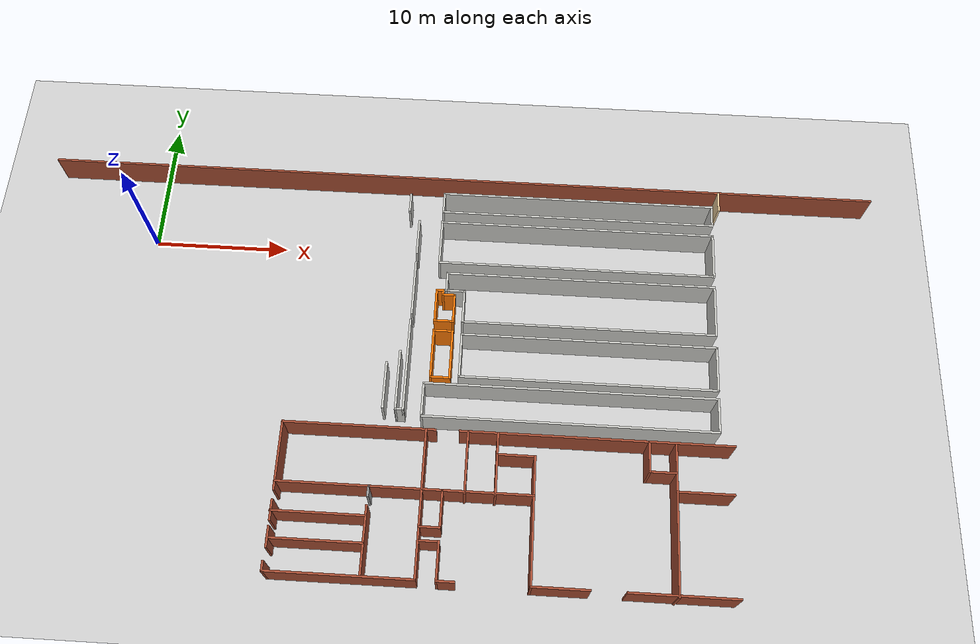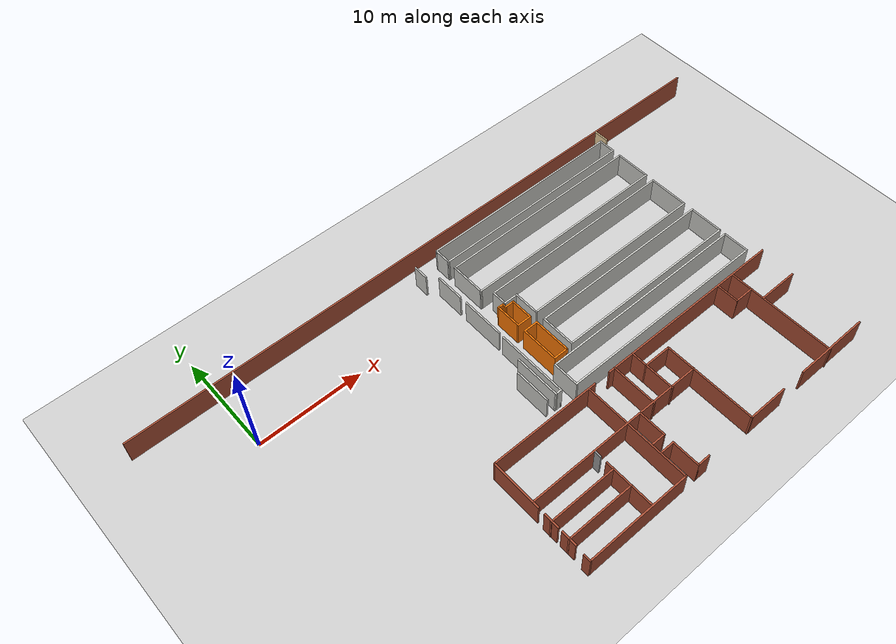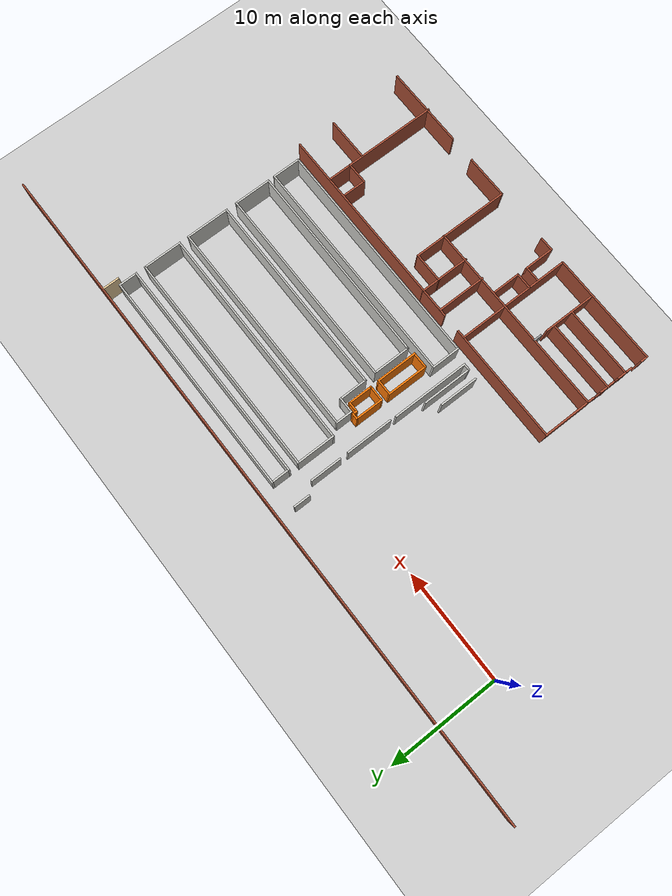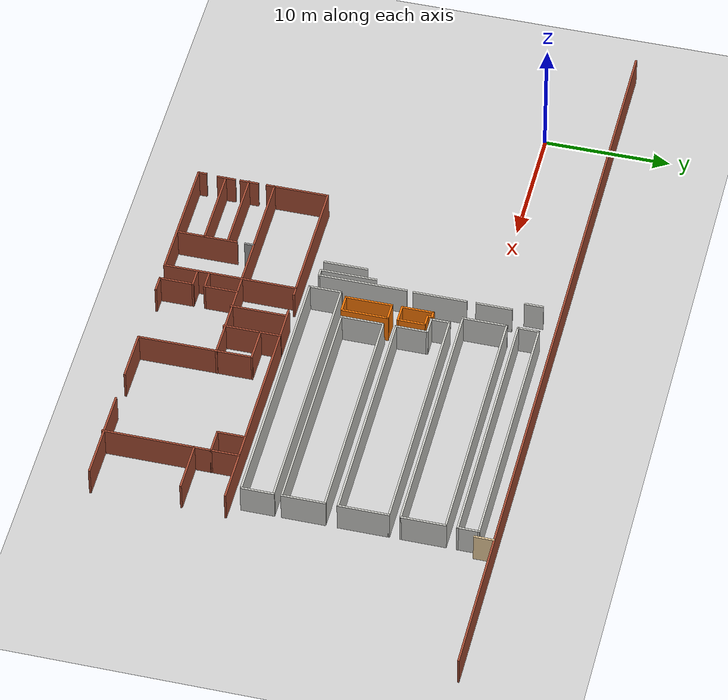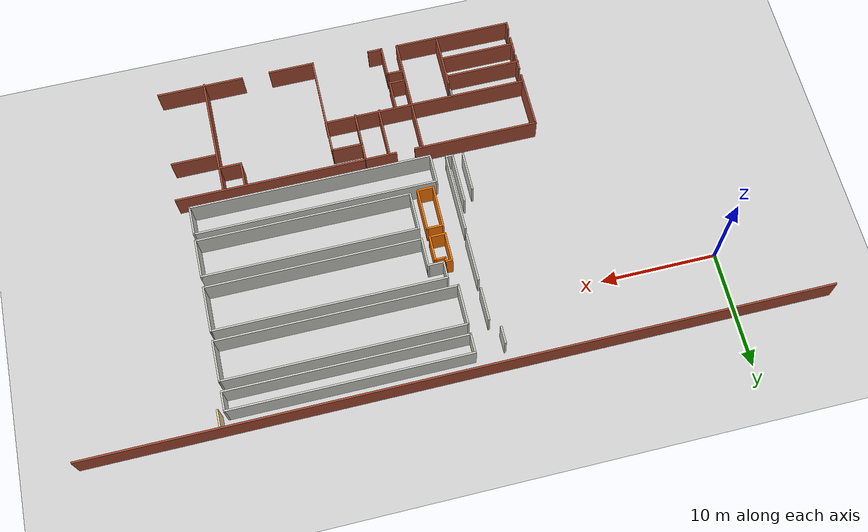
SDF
<sdf version="1.6">
 <world name="default">
  <model name="ground_plane">
   <static>1</static>
   <link name="link">
    <collision name="collision">
     <geometry><plane><normal>0 0 1</normal><size>100 100</size></plane></geometry>
     <surface><friction><ode><mu>100</mu><mu2>50</mu2></ode></friction></surface>
    </collision>
    <visual name="visual">
     <cast_shadows>0</cast_shadows>
     <geometry><plane><normal>0 0 1</normal><size>100 100</size></plane></geometry>
     <material>
      <script><uri>file://media/materials/scripts/gazebo.material</uri><name>Gazebo/Grey</name></script>
     </material>
    </visual>
   </link>
  </model>
  <model name="jeonju-2023">
   <pose>-5.65351 1.61412 0 0 -0 0</pose>
   <link name="Wall_112">
    <collision name="Wall_112_Collision">
     <geometry><box><size>62.5 0.15 2.5</size></box></geometry>
     <pose>0 0 1.25 0 -0 0</pose>
    </collision>
    <visual name="Wall_112_Visual">
     <pose>0 0 1.25 0 -0 0</pose>
     <geometry><box><size>62.5 0.15 2.5</size></box></geometry>
     <material>
      <script><uri>file://media/materials/scripts/gazebo.material</uri><name>Gazebo/Bricks</name></script>
      <ambient>1 1 1 1</ambient>
     </material>
    </visual>
    <pose>28.7185 3.9415 0 0 -0 0</pose>
   </link>
   <link name="Wall_121">
    <collision name="Wall_121_Collision">
     <geometry><box><size>7.502 0.15 2.5</size></box></geometry>
     <pose>0 0 1.25 0 -0 0</pose>
    </collision>
    <visual name="Wall_121_Visual">
     <pose>0 0 1.25 0 -0 0</pose>
     <geometry><box><size>7.502 0.15 2.5</size></box></geometry>
     <material>
      <script><uri>file://media/materials/scripts/gazebo.material</uri><name>Gazebo/Bricks</name></script>
      <ambient>1 1 1 1</ambient>
     </material>
    </visual>
    <pose>45.1485 -26.6705 0 0 -0 3.14159</pose>
   </link>
   <link name="Wall_123">
    <collision name="Wall_123_Collision">
     <geometry><box><size>4 0.15 2.5</size></box></geometry>
     <pose>0 0 1.25 0 -0 0</pose>
    </collision>
    <visual name="Wall_123_Visual">
     <pose>0 0 1.25 0 -0 0</pose>
     <geometry><box><size>4 0.15 2.5</size></box></geometry>
     <material>
      <script><uri>file://media/materials/scripts/gazebo.material</uri><name>Gazebo/Bricks</name></script>
      <ambient>1 1 1 1</ambient>
     </material>
    </visual>
    <pose>37.0525 -26.6665 0 0 -0 3.14159</pose>
   </link>
   <link name="Wall_124">
    <collision name="Wall_124_Collision">
     <geometry><box><size>9 0.15 2.5</size></box></geometry>
     <pose>0 0 1.25 0 -0 0</pose>
    </collision>
    <visual name="Wall_124_Visual">
     <pose>0 0 1.25 0 -0 0</pose>
     <geometry><box><size>9 0.15 2.5</size></box></geometry>
     <material>
      <script><uri>file://media/materials/scripts/gazebo.material</uri><name>Gazebo/Bricks</name></script>
      <ambient>1 1 1 1</ambient>
     </material>
    </visual>
    <pose>35.1275 -22.2415 0 0 -0 1.5708</pose>
   </link>
   <link name="Wall_125">
    <collision name="Wall_125_Collision">
     <geometry><box><size>2.75338 0.15 2.5</size></box></geometry>
     <pose>0 0 1.25 0 -0 0</pose>
    </collision>
    <visual name="Wall_125_Visual">
     <pose>0 0 1.25 0 -0 0</pose>
     <geometry><box><size>2.75338 0.15 2.5</size></box></geometry>
     <material>
      <script><uri>file://media/materials/scripts/gazebo.material</uri><name>Gazebo/Bricks</name></script>
      <ambient>1 1 1 1</ambient>
     </material>
    </visual>
    <pose>33.826 -17.811 0 0 -0 3.13737</pose>
   </link>
   <link name="Wall_126">
    <collision name="Wall_126_Collision">
     <geometry><box><size>1.676 0.15 2.5</size></box></geometry>
     <pose>0 0 1.25 0 -0 0</pose>
    </collision>
    <visual name="Wall_126_Visual">
     <pose>0 0 1.25 0 -0 0</pose>
     <geometry><box><size>1.676 0.15 2.5</size></box></geometry>
     <material>
      <script><uri>file://media/materials/scripts/gazebo.material</uri><name>Gazebo/Bricks</name></script>
      <ambient>1 1 1 1</ambient>
     </material>
    </visual>
    <pose>32.5245 -17.0425 0 0 -0 1.5708</pose>
   </link>
   <link name="Wall_127">
    <collision name="Wall_127_Collision">
     <geometry><box><size>16.45 0.15 2.5</size></box></geometry>
     <pose>0 0 1.25 0 -0 0</pose>
    </collision>
    <visual name="Wall_127_Visual">
     <pose>0 0 1.25 0 -0 0</pose>
     <geometry><box><size>16.45 0.15 2.5</size></box></geometry>
     <material>
      <script><uri>file://media/materials/scripts/gazebo.material</uri><name>Gazebo/Bricks</name></script>
      <ambient>1 1 1 1</ambient>
     </material>
    </visual>
    <pose>40.6745 -16.2795 0 0 -0 0</pose>
   </link>
   <link name="Wall_130">
    <collision name="Wall_130_Collision">
     <geometry><box><size>1.32194 0.15 2.5</size></box></geometry>
     <pose>0 0 1.25 0 -0 0</pose>
    </collision>
    <visual name="Wall_130_Visual">
     <pose>0 0 1.25 0 -0 0</pose>
     <geometry><box><size>1.32194 0.15 2.5</size></box></geometry>
     <material>
      <script><uri>file://media/materials/scripts/gazebo.material</uri><name>Gazebo/Bricks</name></script>
      <ambient>1 1 1 1</ambient>
     </material>
    </visual>
    <pose>29.5105 -26.6665 0 0 -0 3.14159</pose>
   </link>
   <link name="Wall_132">
    <collision name="Wall_132_Collision">
     <geometry><box><size>10.2287 0.15 2.5</size></box></geometry>
     <pose>0 0 1.25 0 -0 0</pose>
    </collision>
    <visual name="Wall_132_Visual">
     <pose>0 0 1.25 0 -0 0</pose>
     <geometry><box><size>10.2287 0.15 2.5</size></box></geometry>
     <material>
      <script><uri>file://media/materials/scripts/gazebo.material</uri><name>Gazebo/Bricks</name></script>
      <ambient>1 1 1 1</ambient>
     </material>
    </visual>
    <pose>22.485 -26.6665 0 0 -0 3.14159</pose>
   </link>
   <link name="Wall_133">
    <collision name="Wall_133_Collision">
     <geometry><box><size>0.75 0.15 2.5</size></box></geometry>
     <pose>0 0 1.25 0 -0 0</pose>
    </collision>
    <visual name="Wall_133_Visual">
     <pose>0 0 1.25 0 -0 0</pose>
     <geometry><box><size>0.75 0.15 2.5</size></box></geometry>
     <material>
      <script><uri>file://media/materials/scripts/gazebo.material</uri><name>Gazebo/Bricks</name></script>
      <ambient>1 1 1 1</ambient>
     </material>
    </visual>
    <pose>17.4455 -26.3665 0 0 -0 1.5708</pose>
   </link>
   <link name="Wall_295">
    <collision name="Wall_295_Collision">
     <geometry><box><size>1.5 0.15 2.5</size></box></geometry>
     <pose>0 0 1.25 0 -0 0</pose>
    </collision>
    <visual name="Wall_295_Visual">
     <pose>0 0 1.25 0 -0 0</pose>
     <geometry><box><size>1.5 0.15 2.5</size></box></geometry>
     <material>
      <script><uri>file://media/materials/scripts/gazebo.material</uri><name>Gazebo/CeilingTiled</name></script>
      <ambient>0.435294 0.796078 0.67451 1</ambient>
     </material>
    </visual>
    <pose>25.0245 1.7515 0 0 0 -1.5708</pose>
   </link>
   <link name="Wall_300">
    <collision name="Wall_300_Collision">
     <geometry><box><size>2.853 0.15 2.5</size></box></geometry>
     <pose>0 0 1.25 0 -0 0</pose>
    </collision>
    <visual name="Wall_300_Visual">
     <pose>0 0 1.25 0 -0 0</pose>
     <geometry><box><size>2.853 0.15 2.5</size></box></geometry>
     <material>
      <script><uri>file://media/materials/scripts/gazebo.material</uri><name>Gazebo/CeilingTiled</name></script>
      <ambient>0.435294 0.796078 0.67451 1</ambient>
     </material>
    </visual>
    <pose>25.8245 -1.178 0 0 0 -1.5708</pose>
   </link>
   <link name="Wall_305">
    <collision name="Wall_305_Collision">
     <geometry><box><size>4.25 0.15 2.5</size></box></geometry>
     <pose>0 0 1.25 0 -0 0</pose>
    </collision>
    <visual name="Wall_305_Visual">
     <pose>0 0 1.25 0 -0 0</pose>
     <geometry><box><size>4.25 0.15 2.5</size></box></geometry>
     <material>
      <script><uri>file://media/materials/scripts/gazebo.material</uri><name>Gazebo/CeilingTiled</name></script>
      <ambient>0.435294 0.796078 0.67451 1</ambient>
     </material>
    </visual>
    <pose>25.8305 -5.4155 0 0 0 -1.5708</pose>
   </link>
   <link name="Wall_310">
    <collision name="Wall_310_Collision">
     <geometry><box><size>7 0.15 2.5</size></box></geometry>
     <pose>0 0 1.25 0 -0 0</pose>
    </collision>
    <visual name="Wall_310_Visual">
     <pose>0 0 1.25 0 -0 0</pose>
     <geometry><box><size>7 0.15 2.5</size></box></geometry>
     <material>
      <script><uri>file://media/materials/scripts/gazebo.material</uri><name>Gazebo/CeilingTiled</name></script>
      <ambient>0.435294 0.796078 0.67451 1</ambient>
     </material>
    </visual>
    <pose>25.7885 -11.4905 0 0 0 -1.5708</pose>
   </link>
   <link name="Wall_311">
    <collision name="Wall_311_Collision">
     <geometry><box><size>0.691 0.15 2.5</size></box></geometry>
     <pose>0 0 1.25 0 -0 0</pose>
    </collision>
    <visual name="Wall_311_Visual">
     <pose>0 0 1.25 0 -0 0</pose>
     <geometry><box><size>0.691 0.15 2.5</size></box></geometry>
     <material>
      <script><uri>file://media/materials/scripts/gazebo.material</uri><name>Gazebo/CeilingTiled</name></script>
      <ambient>0.435294 0.796078 0.67451 1</ambient>
     </material>
    </visual>
    <pose>25.518 -14.9155 0 0 -0 3.14159</pose>
   </link>
   <link name="Wall_312">
    <collision name="Wall_312_Collision">
     <geometry><box><size>4.5 0.15 2.5</size></box></geometry>
     <pose>0 0 1.25 0 -0 0</pose>
    </collision>
    <visual name="Wall_312_Visual">
     <pose>0 0 1.25 0 -0 0</pose>
     <geometry><box><size>4.5 0.15 2.5</size></box></geometry>
     <material>
      <script><uri>file://media/materials/scripts/gazebo.material</uri><name>Gazebo/CeilingTiled</name></script>
      <ambient>0.435294 0.796078 0.67451 1</ambient>
     </material>
    </visual>
    <pose>25.2475 -12.7405 0 0 -0 1.5708</pose>
   </link>
   <link name="Wall_317">
    <collision name="Wall_317_Collision">
     <geometry><box><size>3.5 0.15 2.5</size></box></geometry>
     <pose>0 0 1.25 0 -0 0</pose>
    </collision>
    <visual name="Wall_317_Visual">
     <pose>0 0 1.25 0 -0 0</pose>
     <geometry><box><size>3.5 0.15 2.5</size></box></geometry>
     <material>
      <script><uri>file://media/materials/scripts/gazebo.material</uri><name>Gazebo/CeilingTiled</name></script>
      <ambient>0.435294 0.796078 0.67451 1</ambient>
     </material>
    </visual>
    <pose>24.3495 -13.1595 0 0 0 -1.5708</pose>
   </link>
   <link name="Wall_321">
    <collision name="Wall_321_Collision">
     <geometry><box><size>20.4063 0.15 2.5</size></box></geometry>
     <pose>0 0 1.25 0 -0 0</pose>
    </collision>
    <visual name="Wall_321_Visual">
     <pose>0 0 1.25 0 -0 0</pose>
     <geometry><box><size>20.4063 0.15 2.5</size></box></geometry>
     <material>
      <script><uri>file://media/materials/scripts/gazebo.material</uri><name>Gazebo/CeilingTiled</name></script>
      <ambient>0.996078 0.47451 0.0196078 1</ambient>
     </material>
    </visual>
    <pose>37.6965 2.6705 0 0 -0 0</pose>
   </link>
   <link name="Wall_322">
    <collision name="Wall_322_Collision">
     <geometry><box><size>1.75 0.15 2.5</size></box></geometry>
     <pose>0 0 1.25 0 -0 0</pose>
    </collision>
    <visual name="Wall_322_Visual">
     <pose>0 0 1.25 0 -0 0</pose>
     <geometry><box><size>1.75 0.15 2.5</size></box></geometry>
     <material>
      <script><uri>file://media/materials/scripts/gazebo.material</uri><name>Gazebo/CeilingTiled</name></script>
      <ambient>0.996078 0.47451 0.0196078 1</ambient>
     </material>
    </visual>
    <pose>47.8245 1.8705 0 0 0 -1.5708</pose>
   </link>
   <link name="Wall_323">
    <collision name="Wall_323_Collision">
     <geometry><box><size>20.4063 0.15 2.5</size></box></geometry>
     <pose>0 0 1.25 0 -0 0</pose>
    </collision>
    <visual name="Wall_323_Visual">
     <pose>0 0 1.25 0 -0 0</pose>
     <geometry><box><size>20.4063 0.15 2.5</size></box></geometry>
     <material>
      <script><uri>file://media/materials/scripts/gazebo.material</uri><name>Gazebo/CeilingTiled</name></script>
      <ambient>0.996078 0.47451 0.0196078 1</ambient>
     </material>
    </visual>
    <pose>37.6965 1.0705 0 0 -0 3.14159</pose>
   </link>
   <link name="Wall_324">
    <collision name="Wall_324_Collision">
     <geometry><box><size>1.75 0.15 2.5</size></box></geometry>
     <pose>0 0 1.25 0 -0 0</pose>
    </collision>
    <visual name="Wall_324_Visual">
     <pose>0 0 1.25 0 -0 0</pose>
     <geometry><box><size>1.75 0.15 2.5</size></box></geometry>
     <material>
      <script><uri>file://media/materials/scripts/gazebo.material</uri><name>Gazebo/CeilingTiled</name></script>
      <ambient>0.996078 0.47451 0.0196078 1</ambient>
     </material>
    </visual>
    <pose>27.5685 1.8705 0 0 -0 1.5708</pose>
   </link>
   <link name="Wall_326">
    <collision name="Wall_326_Collision">
     <geometry><box><size>20.422 0.15 2.5</size></box></geometry>
     <pose>0 0 1.25 0 -0 0</pose>
    </collision>
    <visual name="Wall_326_Visual">
     <pose>0 0 1.25 0 -0 0</pose>
     <geometry><box><size>20.422 0.15 2.5</size></box></geometry>
     <material>
      <script><uri>file://media/materials/scripts/gazebo.material</uri><name>Gazebo/CeilingTiled</name></script>
      <ambient>0.996078 0.47451 0.0196078 1</ambient>
     </material>
    </visual>
    <pose>37.6885 0.1765 0 0 -0 0</pose>
   </link>
   <link name="Wall_327">
    <collision name="Wall_327_Collision">
     <geometry><box><size>3.556 0.15 2.5</size></box></geometry>
     <pose>0 0 1.25 0 -0 0</pose>
    </collision>
    <visual name="Wall_327_Visual">
     <pose>0 0 1.25 0 -0 0</pose>
     <geometry><box><size>3.556 0.15 2.5</size></box></geometry>
     <material>
      <script><uri>file://media/materials/scripts/gazebo.material</uri><name>Gazebo/CeilingTiled</name></script>
      <ambient>0.996078 0.47451 0.0196078 1</ambient>
     </material>
    </visual>
    <pose>47.8245 -1.5265 0 0 0 -1.5708</pose>
   </link>
   <link name="Wall_328">
    <collision name="Wall_328_Collision">
     <geometry><box><size>20.422 0.15 2.5</size></box></geometry>
     <pose>0 0 1.25 0 -0 0</pose>
    </collision>
    <visual name="Wall_328_Visual">
     <pose>0 0 1.25 0 -0 0</pose>
     <geometry><box><size>20.422 0.15 2.5</size></box></geometry>
     <material>
      <script><uri>file://media/materials/scripts/gazebo.material</uri><name>Gazebo/CeilingTiled</name></script>
      <ambient>0.996078 0.47451 0.0196078 1</ambient>
     </material>
    </visual>
    <pose>37.6885 -3.2295 0 0 -0 3.14159</pose>
   </link>
   <link name="Wall_329">
    <collision name="Wall_329_Collision">
     <geometry><box><size>3.55624 0.15 2.5</size></box></geometry>
     <pose>0 0 1.25 0 -0 0</pose>
    </collision>
    <visual name="Wall_329_Visual">
     <pose>0 0 1.25 0 -0 0</pose>
     <geometry><box><size>3.55624 0.15 2.5</size></box></geometry>
     <material>
      <script><uri>file://media/materials/scripts/gazebo.material</uri><name>Gazebo/CeilingTiled</name></script>
      <ambient>0.996078 0.47451 0.0196078 1</ambient>
     </material>
    </visual>
    <pose>27.5525 -1.5265 0 0 -0 1.5708</pose>
   </link>
   <link name="Wall_331">
    <collision name="Wall_331_Collision">
     <geometry><box><size>19.75 0.15 2.5</size></box></geometry>
     <pose>0 0 1.25 0 -0 0</pose>
    </collision>
    <visual name="Wall_331_Visual">
     <pose>0 0 1.25 0 -0 0</pose>
     <geometry><box><size>19.75 0.15 2.5</size></box></geometry>
     <material>
      <script><uri>file://media/materials/scripts/gazebo.material</uri><name>Gazebo/CeilingTiled</name></script>
      <ambient>0.996078 0.47451 0.0196078 1</ambient>
     </material>
    </visual>
    <pose>38.0245 -4.1145 0 0 -0 0</pose>
   </link>
   <link name="Wall_332">
    <collision name="Wall_332_Collision">
     <geometry><box><size>4 0.15 2.5</size></box></geometry>
     <pose>0 0 1.25 0 -0 0</pose>
    </collision>
    <visual name="Wall_332_Visual">
     <pose>0 0 1.25 0 -0 0</pose>
     <geometry><box><size>4 0.15 2.5</size></box></geometry>
     <material>
      <script><uri>file://media/materials/scripts/gazebo.material</uri><name>Gazebo/CeilingTiled</name></script>
      <ambient>0.996078 0.47451 0.0196078 1</ambient>
     </material>
    </visual>
    <pose>47.8245 -6.0395 0 0 0 -1.5708</pose>
   </link>
   <link name="Wall_333">
    <collision name="Wall_333_Collision">
     <geometry><box><size>18.4297 0.15 2.5</size></box></geometry>
     <pose>0 0 1.25 0 -0 0</pose>
    </collision>
    <visual name="Wall_333_Visual">
     <pose>0 0 1.25 0 -0 0</pose>
     <geometry><box><size>18.4297 0.15 2.5</size></box></geometry>
     <material>
      <script><uri>file://media/materials/scripts/gazebo.material</uri><name>Gazebo/CeilingTiled</name></script>
      <ambient>0.996078 0.47451 0.0196078 1</ambient>
     </material>
    </visual>
    <pose>38.6845 -7.9645 0 0 -0 3.14159</pose>
   </link>
   <link name="Wall_334">
    <collision name="Wall_334_Collision">
     <geometry><box><size>2.58514 0.15 2.5</size></box></geometry>
     <pose>0 0 1.25 0 -0 0</pose>
    </collision>
    <visual name="Wall_334_Visual">
     <pose>0 0 1.25 0 -0 0</pose>
     <geometry><box><size>2.58514 0.15 2.5</size></box></geometry>
     <material>
      <script><uri>file://media/materials/scripts/gazebo.material</uri><name>Gazebo/CeilingTiled</name></script>
      <ambient>0.996078 0.47451 0.0196078 1</ambient>
     </material>
    </visual>
    <pose>29.5445 -6.747 0 0 -0 1.5708</pose>
   </link>
   <link name="Wall_335">
    <collision name="Wall_335_Collision">
     <geometry><box><size>1.47 0.15 2.5</size></box></geometry>
     <pose>0 0 1.25 0 -0 0</pose>
    </collision>
    <visual name="Wall_335_Visual">
     <pose>0 0 1.25 0 -0 0</pose>
     <geometry><box><size>1.47 0.15 2.5</size></box></geometry>
     <material>
      <script><uri>file://media/materials/scripts/gazebo.material</uri><name>Gazebo/CeilingTiled</name></script>
      <ambient>0.996078 0.47451 0.0196078 1</ambient>
     </material>
    </visual>
    <pose>28.8845 -5.5295 0 0 -0 3.14159</pose>
   </link>
   <link name="Wall_336">
    <collision name="Wall_336_Collision">
     <geometry><box><size>1.565 0.15 2.5</size></box></geometry>
     <pose>0 0 1.25 0 -0 0</pose>
    </collision>
    <visual name="Wall_336_Visual">
     <pose>0 0 1.25 0 -0 0</pose>
     <geometry><box><size>1.565 0.15 2.5</size></box></geometry>
     <material>
      <script><uri>file://media/materials/scripts/gazebo.material</uri><name>Gazebo/CeilingTiled</name></script>
      <ambient>0.996078 0.47451 0.0196078 1</ambient>
     </material>
    </visual>
    <pose>28.2245 -4.822 0 0 -0 1.5708</pose>
   </link>
   <link name="Wall_338">
    <collision name="Wall_338_Collision">
     <geometry><box><size>1.47627 0.15 2.5</size></box></geometry>
     <pose>0 0 1.25 0 -0 0</pose>
    </collision>
    <visual name="Wall_338_Visual">
     <pose>0 0 1.25 0 -0 0</pose>
     <geometry><box><size>1.47627 0.15 2.5</size></box></geometry>
     <material>
      <script><uri>file://media/materials/scripts/gazebo.material</uri><name>Gazebo/Grey</name></script>
      <ambient>0.996078 0.47451 0.0196078 1</ambient>
     </material>
    </visual>
    <pose>28.1875 -7.9775 0 0 -0 0</pose>
   </link>
   <link name="Wall_339">
    <collision name="Wall_339_Collision">
     <geometry><box><size>2.25 0.15 2.5</size></box></geometry>
     <pose>0 0 1.25 0 -0 0</pose>
    </collision>
    <visual name="Wall_339_Visual">
     <pose>0 0 1.25 0 -0 0</pose>
     <geometry><box><size>2.25 0.15 2.5</size></box></geometry>
     <material>
      <script><uri>file://media/materials/scripts/gazebo.material</uri><name>Gazebo/Grey</name></script>
      <ambient>0.996078 0.47451 0.0196078 1</ambient>
     </material>
    </visual>
    <pose>28.8505 -6.9275 0 0 -0 1.5708</pose>
   </link>
   <link name="Wall_340">
    <collision name="Wall_340_Collision">
     <geometry><box><size>1 0.15 2.5</size></box></geometry>
     <pose>0 0 1.25 0 -0 0</pose>
    </collision>
    <visual name="Wall_340_Visual">
     <pose>0 0 1.25 0 -0 0</pose>
     <geometry><box><size>1 0.15 2.5</size></box></geometry>
     <material>
      <script><uri>file://media/materials/scripts/gazebo.material</uri><name>Gazebo/Grey</name></script>
      <ambient>0.996078 0.47451 0.0196078 1</ambient>
     </material>
    </visual>
    <pose>28.4255 -5.8775 0 0 -0 3.14159</pose>
   </link>
   <link name="Wall_341">
    <collision name="Wall_341_Collision">
     <geometry><box><size>0.5 0.15 2.5</size></box></geometry>
     <pose>0 0 1.25 0 -0 0</pose>
    </collision>
    <visual name="Wall_341_Visual">
     <pose>0 0 1.25 0 -0 0</pose>
     <geometry><box><size>0.5 0.15 2.5</size></box></geometry>
     <material>
      <script><uri>file://media/materials/scripts/gazebo.material</uri><name>Gazebo/Grey</name></script>
      <ambient>0.996078 0.47451 0.0196078 1</ambient>
     </material>
    </visual>
    <pose>28.0005 -5.7025 0 0 -0 1.5708</pose>
   </link>
   <link name="Wall_342">
    <collision name="Wall_342_Collision">
     <geometry><box><size>0.626268 0.15 2.5</size></box></geometry>
     <pose>0 0 1.25 0 -0 0</pose>
    </collision>
    <visual name="Wall_342_Visual">
     <pose>0 0 1.25 0 -0 0</pose>
     <geometry><box><size>0.626268 0.15 2.5</size></box></geometry>
     <material>
      <script><uri>file://media/materials/scripts/gazebo.material</uri><name>Gazebo/Grey</name></script>
      <ambient>0.996078 0.47451 0.0196078 1</ambient>
     </material>
    </visual>
    <pose>27.7625 -5.5275 0 0 -0 3.14159</pose>
   </link>
   <link name="Wall_343">
    <collision name="Wall_343_Collision">
     <geometry><box><size>2.59973 0.15 2.5</size></box></geometry>
     <pose>0 0 1.25 0 -0 0</pose>
    </collision>
    <visual name="Wall_343_Visual">
     <pose>0 0 1.25 0 -0 0</pose>
     <geometry><box><size>2.59973 0.15 2.5</size></box></geometry>
     <material>
      <script><uri>file://media/materials/scripts/gazebo.material</uri><name>Gazebo/Grey</name></script>
      <ambient>0.996078 0.47451 0.0196078 1</ambient>
     </material>
    </visual>
    <pose>27.5245 -6.7525 0 0 0 -1.5708</pose>
   </link>
   <link name="Wall_345">
    <collision name="Wall_345_Collision">
     <geometry><box><size>1.50272 0.15 2.5</size></box></geometry>
     <pose>0 0 1.25 0 -0 0</pose>
    </collision>
    <visual name="Wall_345_Visual">
     <pose>0 0 1.25 0 -0 0</pose>
     <geometry><box><size>1.50272 0.15 2.5</size></box></geometry>
     <material>
      <script><uri>file://media/materials/scripts/gazebo.material</uri><name>Gazebo/Grey</name></script>
      <ambient>0.996078 0.47451 0.0196078 1</ambient>
     </material>
    </visual>
    <pose>28.201 -8.7705 0 0 -0 0</pose>
   </link>
   <link name="Wall_346">
    <collision name="Wall_346_Collision">
     <geometry><box><size>3.75 0.15 2.5</size></box></geometry>
     <pose>0 0 1.25 0 -0 0</pose>
    </collision>
    <visual name="Wall_346_Visual">
     <pose>0 0 1.25 0 -0 0</pose>
     <geometry><box><size>3.75 0.15 2.5</size></box></geometry>
     <material>
      <script><uri>file://media/materials/scripts/gazebo.material</uri><name>Gazebo/Grey</name></script>
      <ambient>0.996078 0.47451 0.0196078 1</ambient>
     </material>
    </visual>
    <pose>28.8775 -10.5705 0 0 0 -1.5708</pose>
   </link>
   <link name="Wall_347">
    <collision name="Wall_347_Collision">
     <geometry><box><size>1.50272 0.15 2.5</size></box></geometry>
     <pose>0 0 1.25 0 -0 0</pose>
    </collision>
    <visual name="Wall_347_Visual">
     <pose>0 0 1.25 0 -0 0</pose>
     <geometry><box><size>1.50272 0.15 2.5</size></box></geometry>
     <material>
      <script><uri>file://media/materials/scripts/gazebo.material</uri><name>Gazebo/Grey</name></script>
      <ambient>0.996078 0.47451 0.0196078 1</ambient>
     </material>
    </visual>
    <pose>28.201 -12.3705 0 0 -0 3.14159</pose>
   </link>
   <link name="Wall_348">
    <collision name="Wall_348_Collision">
     <geometry><box><size>3.75 0.15 2.5</size></box></geometry>
     <pose>0 0 1.25 0 -0 0</pose>
    </collision>
    <visual name="Wall_348_Visual">
     <pose>0 0 1.25 0 -0 0</pose>
     <geometry><box><size>3.75 0.15 2.5</size></box></geometry>
     <material>
      <script><uri>file://media/materials/scripts/gazebo.material</uri><name>Gazebo/Grey</name></script>
      <ambient>0.996078 0.47451 0.0196078 1</ambient>
     </material>
    </visual>
    <pose>27.5245 -10.5705 0 0 -0 1.5708</pose>
   </link>
   <link name="Wall_350">
    <collision name="Wall_350_Collision">
     <geometry><box><size>18.4188 0.15 2.5</size></box></geometry>
     <pose>0 0 1.25 0 -0 0</pose>
    </collision>
    <visual name="Wall_350_Visual">
     <pose>0 0 1.25 0 -0 0</pose>
     <geometry><box><size>18.4188 0.15 2.5</size></box></geometry>
     <material>
      <script><uri>file://media/materials/scripts/gazebo.material</uri><name>Gazebo/CeilingTiled</name></script>
      <ambient>0.996078 0.47451 0.0196078 1</ambient>
     </material>
    </visual>
    <pose>38.69 -8.9575 0 0 -0 0</pose>
   </link>
   <link name="Wall_351">
    <collision name="Wall_351_Collision">
     <geometry><box><size>3.422 0.15 2.5</size></box></geometry>
     <pose>0 0 1.25 0 -0 0</pose>
    </collision>
    <visual name="Wall_351_Visual">
     <pose>0 0 1.25 0 -0 0</pose>
     <geometry><box><size>3.422 0.15 2.5</size></box></geometry>
     <material>
      <script><uri>file://media/materials/scripts/gazebo.material</uri><name>Gazebo/CeilingTiled</name></script>
      <ambient>0.996078 0.47451 0.0196078 1</ambient>
     </material>
    </visual>
    <pose>47.8245 -10.5935 0 0 0 -1.5708</pose>
   </link>
   <link name="Wall_352">
    <collision name="Wall_352_Collision">
     <geometry><box><size>18.4188 0.15 2.5</size></box></geometry>
     <pose>0 0 1.25 0 -0 0</pose>
    </collision>
    <visual name="Wall_352_Visual">
     <pose>0 0 1.25 0 -0 0</pose>
     <geometry><box><size>18.4188 0.15 2.5</size></box></geometry>
     <material>
      <script><uri>file://media/materials/scripts/gazebo.material</uri><name>Gazebo/CeilingTiled</name></script>
      <ambient>0.996078 0.47451 0.0196078 1</ambient>
     </material>
    </visual>
    <pose>38.69 -12.2295 0 0 -0 3.14159</pose>
   </link>
   <link name="Wall_353">
    <collision name="Wall_353_Collision">
     <geometry><box><size>3.42187 0.15 2.5</size></box></geometry>
     <pose>0 0 1.25 0 -0 0</pose>
    </collision>
    <visual name="Wall_353_Visual">
     <pose>0 0 1.25 0 -0 0</pose>
     <geometry><box><size>3.42187 0.15 2.5</size></box></geometry>
     <material>
      <script><uri>file://media/materials/scripts/gazebo.material</uri><name>Gazebo/CeilingTiled</name></script>
      <ambient>0.996078 0.47451 0.0196078 1</ambient>
     </material>
    </visual>
    <pose>29.5555 -10.5935 0 0 -0 1.5708</pose>
   </link>
   <link name="Wall_355">
    <collision name="Wall_355_Collision">
     <geometry><box><size>20.8717 0.15 2.5</size></box></geometry>
     <pose>0 0 1.25 0 -0 0</pose>
    </collision>
    <visual name="Wall_355_Visual">
     <pose>0 0 1.25 0 -0 0</pose>
     <geometry><box><size>20.8717 0.15 2.5</size></box></geometry>
     <material>
      <script><uri>file://media/materials/scripts/gazebo.material</uri><name>Gazebo/CeilingTiled</name></script>
      <ambient>0.996078 0.47451 0.0196078 1</ambient>
     </material>
    </visual>
    <pose>37.4635 -12.8625 0 0 -0 0</pose>
   </link>
   <link name="Wall_356">
    <collision name="Wall_356_Collision">
     <geometry><box><size>2.617 0.15 2.5</size></box></geometry>
     <pose>0 0 1.25 0 -0 0</pose>
    </collision>
    <visual name="Wall_356_Visual">
     <pose>0 0 1.25 0 -0 0</pose>
     <geometry><box><size>2.617 0.15 2.5</size></box></geometry>
     <material>
      <script><uri>file://media/materials/scripts/gazebo.material</uri><name>Gazebo/CeilingTiled</name></script>
      <ambient>0.996078 0.47451 0.0196078 1</ambient>
     </material>
    </visual>
    <pose>47.8245 -14.096 0 0 0 -1.5708</pose>
   </link>
   <link name="Wall_357">
    <collision name="Wall_357_Collision">
     <geometry><box><size>20.8717 0.15 2.5</size></box></geometry>
     <pose>0 0 1.25 0 -0 0</pose>
    </collision>
    <visual name="Wall_357_Visual">
     <pose>0 0 1.25 0 -0 0</pose>
     <geometry><box><size>20.8717 0.15 2.5</size></box></geometry>
     <material>
      <script><uri>file://media/materials/scripts/gazebo.material</uri><name>Gazebo/CeilingTiled</name></script>
      <ambient>0.996078 0.47451 0.0196078 1</ambient>
     </material>
    </visual>
    <pose>37.4635 -15.3295 0 0 -0 3.14159</pose>
   </link>
   <link name="Wall_358">
    <collision name="Wall_358_Collision">
     <geometry><box><size>2.61712 0.15 2.5</size></box></geometry>
     <pose>0 0 1.25 0 -0 0</pose>
    </collision>
    <visual name="Wall_358_Visual">
     <pose>0 0 1.25 0 -0 0</pose>
     <geometry><box><size>2.61712 0.15 2.5</size></box></geometry>
     <material>
      <script><uri>file://media/materials/scripts/gazebo.material</uri><name>Gazebo/CeilingTiled</name></script>
      <ambient>0.996078 0.47451 0.0196078 1</ambient>
     </material>
    </visual>
    <pose>27.1025 -14.096 0 0 -0 1.5708</pose>
   </link>
   <link name="Wall_360">
    <collision name="Wall_360_Collision">
     <geometry><box><size>10.807 0.15 2.5</size></box></geometry>
     <pose>0 0 1.25 0 -0 0</pose>
    </collision>
    <visual name="Wall_360_Visual">
     <pose>0 0 1.25 0 -0 0</pose>
     <geometry><box><size>10.807 0.15 2.5</size></box></geometry>
     <material>
      <script><uri>file://media/materials/scripts/gazebo.material</uri><name>Gazebo/Bricks</name></script>
      <ambient>1 1 1 1</ambient>
     </material>
    </visual>
    <pose>22.853 -16.2925 0 0 -0 3.14159</pose>
   </link>
   <link name="Wall_361">
    <collision name="Wall_361_Collision">
     <geometry><box><size>5 0.15 2.5</size></box></geometry>
     <pose>0 0 1.25 0 -0 0</pose>
    </collision>
    <visual name="Wall_361_Visual">
     <pose>0 0 1.25 0 -0 0</pose>
     <geometry><box><size>5 0.15 2.5</size></box></geometry>
     <material>
      <script><uri>file://media/materials/scripts/gazebo.material</uri><name>Gazebo/Bricks</name></script>
      <ambient>1 1 1 1</ambient>
     </material>
    </visual>
    <pose>17.5245 -18.7175 0 0 0 -1.5708</pose>
   </link>
   <link name="Wall_363">
    <collision name="Wall_363_Collision">
     <geometry><box><size>1.5 0.15 2.5</size></box></geometry>
     <pose>0 0 1.25 0 -0 0</pose>
    </collision>
    <visual name="Wall_363_Visual">
     <pose>0 0 1.25 0 -0 0</pose>
     <geometry><box><size>1.5 0.15 2.5</size></box></geometry>
     <material>
      <script><uri>file://media/materials/scripts/gazebo.material</uri><name>Gazebo/Bricks</name></script>
      <ambient>1 1 1 1</ambient>
     </material>
    </visual>
    <pose>17.5245 -22.5665 0 0 0 -1.5708</pose>
   </link>
   <link name="Wall_365">
    <collision name="Wall_365_Collision">
     <geometry><box><size>1.5 0.15 2.5</size></box></geometry>
     <pose>0 0 1.25 0 -0 0</pose>
    </collision>
    <visual name="Wall_365_Visual">
     <pose>0 0 1.25 0 -0 0</pose>
     <geometry><box><size>1.5 0.15 2.5</size></box></geometry>
     <material>
      <script><uri>file://media/materials/scripts/gazebo.material</uri><name>Gazebo/Bricks</name></script>
      <ambient>1 1 1 1</ambient>
     </material>
    </visual>
    <pose>17.5245 -24.4075 0 0 0 -1.5708</pose>
   </link>
   <link name="Wall_367">
    <collision name="Wall_367_Collision">
     <geometry><box><size>6.5 0.15 2.5</size></box></geometry>
     <pose>0 0 1.25 0 -0 0</pose>
    </collision>
    <visual name="Wall_367_Visual">
     <pose>0 0 1.25 0 -0 0</pose>
     <geometry><box><size>6.5 0.15 2.5</size></box></geometry>
     <material>
      <script><uri>file://media/materials/scripts/gazebo.material</uri><name>Gazebo/Bricks</name></script>
      <ambient>1 1 1 1</ambient>
     </material>
    </visual>
    <pose>20.6575 -22.6065 0 0 -0 0</pose>
   </link>
   <link name="Wall_369">
    <collision name="Wall_369_Collision">
     <geometry><box><size>6.5 0.15 2.5</size></box></geometry>
     <pose>0 0 1.25 0 -0 0</pose>
    </collision>
    <visual name="Wall_369_Visual">
     <pose>0 0 1.25 0 -0 0</pose>
     <geometry><box><size>6.5 0.15 2.5</size></box></geometry>
     <material>
      <script><uri>file://media/materials/scripts/gazebo.material</uri><name>Gazebo/Bricks</name></script>
      <ambient>1 1 1 1</ambient>
     </material>
    </visual>
    <pose>20.6875 -24.4625 0 0 -0 0</pose>
   </link>
   <link name="Wall_371">
    <collision name="Wall_371_Collision">
     <geometry><box><size>4.75 0.15 2.5</size></box></geometry>
     <pose>0 0 1.25 0 -0 0</pose>
    </collision>
    <visual name="Wall_371_Visual">
     <pose>0 0 1.25 0 -0 0</pose>
     <geometry><box><size>4.75 0.15 2.5</size></box></geometry>
     <material>
      <script><uri>file://media/materials/scripts/gazebo.material</uri><name>Gazebo/Bricks</name></script>
      <ambient>1 1 1 1</ambient>
     </material>
    </visual>
    <pose>23.9155 -24.2075 0 0 0 -1.5708</pose>
   </link>
   <link name="Wall_373">
    <collision name="Wall_373_Collision">
     <geometry><box><size>10.5 0.15 2.5</size></box></geometry>
     <pose>0 0 1.25 0 -0 0</pose>
    </collision>
    <visual name="Wall_373_Visual">
     <pose>0 0 1.25 0 -0 0</pose>
     <geometry><box><size>10.5 0.15 2.5</size></box></geometry>
     <material>
      <script><uri>file://media/materials/scripts/gazebo.material</uri><name>Gazebo/Bricks</name></script>
      <ambient>1 1 1 1</ambient>
     </material>
    </visual>
    <pose>27.5245 -21.4915 0 0 -0 1.5708</pose>
   </link>
   <link name="Wall_375">
    <collision name="Wall_375_Collision">
     <geometry><box><size>17.75 0.15 2.5</size></box></geometry>
     <pose>0 0 1.25 0 -0 0</pose>
    </collision>
    <visual name="Wall_375_Visual">
     <pose>0 0 1.25 0 -0 0</pose>
     <geometry><box><size>17.75 0.15 2.5</size></box></geometry>
     <material>
      <script><uri>file://media/materials/scripts/gazebo.material</uri><name>Gazebo/Bricks</name></script>
      <ambient>1 1 1 1</ambient>
     </material>
    </visual>
    <pose>26.3535 -20.5577 0 0 -0 0</pose>
   </link>
   <link name="Wall_377">
    <collision name="Wall_377_Collision">
     <geometry><box><size>0.75 0.15 2.5</size></box></geometry>
     <pose>0 0 1.25 0 -0 0</pose>
    </collision>
    <visual name="Wall_377_Visual">
     <pose>0 0 1.25 0 -0 0</pose>
     <geometry><box><size>0.75 0.15 2.5</size></box></geometry>
     <material>
      <script><uri>file://media/materials/scripts/gazebo.material</uri><name>Gazebo/Grey</name></script>
      <ambient>1 1 1 1</ambient>
     </material>
    </visual>
    <pose>23.9218 -20.9071 0 0 0 -1.5708</pose>
   </link>
   <link name="Wall_379">
    <collision name="Wall_379_Collision">
     <geometry><box><size>4.5 0.15 2.5</size></box></geometry>
     <pose>0 0 1.25 0 -0 0</pose>
    </collision>
    <visual name="Wall_379_Visual">
     <pose>0 0 1.25 0 -0 0</pose>
     <geometry><box><size>4.5 0.15 2.5</size></box></geometry>
     <material>
      <script><uri>file://media/materials/scripts/gazebo.material</uri><name>Gazebo/Bricks</name></script>
      <ambient>1 1 1 1</ambient>
     </material>
    </visual>
    <pose>30.4385 -18.4715 0 0 0 -1.5708</pose>
   </link>
   <link name="Wall_381">
    <collision name="Wall_381_Collision">
     <geometry><box><size>2.75 0.15 2.5</size></box></geometry>
     <pose>0 0 1.25 0 -0 0</pose>
    </collision>
    <visual name="Wall_381_Visual">
     <pose>0 0 1.25 0 -0 0</pose>
     <geometry><box><size>2.75 0.15 2.5</size></box></geometry>
     <material>
      <script><uri>file://media/materials/scripts/gazebo.material</uri><name>Gazebo/Bricks</name></script>
      <ambient>1 1 1 1</ambient>
     </material>
    </visual>
    <pose>31.1835 -16.2795 0 0 -0 0</pose>
   </link>
   <link name="Wall_383">
    <collision name="Wall_383_Collision">
     <geometry><box><size>2.25 0.15 2.5</size></box></geometry>
     <pose>0 0 1.25 0 -0 0</pose>
    </collision>
    <visual name="Wall_383_Visual">
     <pose>0 0 1.25 0 -0 0</pose>
     <geometry><box><size>2.25 0.15 2.5</size></box></geometry>
     <material>
      <script><uri>file://media/materials/scripts/gazebo.material</uri><name>Gazebo/Bricks</name></script>
      <ambient>1 1 1 1</ambient>
     </material>
    </visual>
    <pose>42.9545 -17.3705 0 0 0 -1.5708</pose>
   </link>
   <link name="Wall_384">
    <collision name="Wall_384_Collision">
     <geometry><box><size>2 0.15 2.5</size></box></geometry>
     <pose>0 0 1.25 0 -0 0</pose>
    </collision>
    <visual name="Wall_384_Visual">
     <pose>0 0 1.25 0 -0 0</pose>
     <geometry><box><size>2 0.15 2.5</size></box></geometry>
     <material>
      <script><uri>file://media/materials/scripts/gazebo.material</uri><name>Gazebo/Bricks</name></script>
      <ambient>1 1 1 1</ambient>
     </material>
    </visual>
    <pose>43.8795 -18.4205 0 0 -0 0</pose>
   </link>
   <link name="Wall_385">
    <collision name="Wall_385_Collision">
     <geometry><box><size>8.5 0.15 2.5</size></box></geometry>
     <pose>0 0 1.25 0 -0 0</pose>
    </collision>
    <visual name="Wall_385_Visual">
     <pose>0 0 1.25 0 -0 0</pose>
     <geometry><box><size>8.5 0.15 2.5</size></box></geometry>
     <material>
      <script><uri>file://media/materials/scripts/gazebo.material</uri><name>Gazebo/Bricks</name></script>
      <ambient>1 1 1 1</ambient>
     </material>
    </visual>
    <pose>44.8045 -22.5955 0 0 0 -1.5708</pose>
   </link>
   <link name="Wall_426">
    <collision name="Wall_426_Collision">
     <geometry><box><size>1.59547 0.15 2.5</size></box></geometry>
     <pose>0 0 1.25 0 -0 0</pose>
    </collision>
    <visual name="Wall_426_Visual">
     <pose>0 0 1.25 0 -0 0</pose>
     <geometry><box><size>1.59547 0.15 2.5</size></box></geometry>
     <material>
      <script><uri>file://media/materials/scripts/gazebo.material</uri><name>Gazebo/Grey</name></script>
      <ambient>0.921569 0.807843 0.615686 1</ambient>
     </material>
    </visual>
    <pose>48.3735 3.193 0 0 0 -1.5708</pose>
   </link>
   <link name="Wall_479">
    <collision name="Wall_479_Collision">
     <geometry><box><size>2.75 0.15 2.5</size></box></geometry>
     <pose>0 0 1.25 0 -0 0</pose>
    </collision>
    <visual name="Wall_479_Visual">
     <pose>0 0 1.25 0 -0 0</pose>
     <geometry><box><size>2.75 0.15 2.5</size></box></geometry>
     <material>
      <script><uri>file://media/materials/scripts/gazebo.material</uri><name>Gazebo/Bricks</name></script>
      <ambient>1 1 1 1</ambient>
     </material>
    </visual>
    <pose>28.9245 -25.3665 0 0 -0 1.5708</pose>
   </link>
   <link name="Wall_480">
    <collision name="Wall_480_Collision">
     <geometry><box><size>1.42806 0.15 2.5</size></box></geometry>
     <pose>0 0 1.25 0 -0 0</pose>
    </collision>
    <visual name="Wall_480_Visual">
     <pose>0 0 1.25 0 -0 0</pose>
     <geometry><box><size>1.42806 0.15 2.5</size></box></geometry>
     <material>
      <script><uri>file://media/materials/scripts/gazebo.material</uri><name>Gazebo/Bricks</name></script>
      <ambient>1 1 1 1</ambient>
     </material>
    </visual>
    <pose>28.2855 -24.0665 0 0 -0 3.14159</pose>
   </link>
   <link name="Wall_482">
    <collision name="Wall_482_Collision">
     <geometry><box><size>2.671 0.15 2.5</size></box></geometry>
     <pose>0 0 1.25 0 -0 0</pose>
    </collision>
    <visual name="Wall_482_Visual">
     <pose>0 0 1.25 0 -0 0</pose>
     <geometry><box><size>2.671 0.15 2.5</size></box></geometry>
     <material>
      <script><uri>file://media/materials/scripts/gazebo.material</uri><name>Gazebo/Bricks</name></script>
      <ambient>1 1 1 1</ambient>
     </material>
    </visual>
    <pose>28.9315 -21.869 0 0 0 -1.5708</pose>
   </link>
   <link name="Wall_483">
    <collision name="Wall_483_Collision">
     <geometry><box><size>1.5 0.15 2.5</size></box></geometry>
     <pose>0 0 1.25 0 -0 0</pose>
    </collision>
    <visual name="Wall_483_Visual">
     <pose>0 0 1.25 0 -0 0</pose>
     <geometry><box><size>1.5 0.15 2.5</size></box></geometry>
     <material>
      <script><uri>file://media/materials/scripts/gazebo.material</uri><name>Gazebo/Bricks</name></script>
      <ambient>1 1 1 1</ambient>
     </material>
    </visual>
    <pose>28.2565 -23.1295 0 0 -0 3.14159</pose>
   </link>
   <link name="Wall_485">
    <collision name="Wall_485_Collision">
     <geometry><box><size>3.00012 0.15 2.5</size></box></geometry>
     <pose>0 0 1.25 0 -0 0</pose>
    </collision>
    <visual name="Wall_485_Visual">
     <pose>0 0 1.25 0 -0 0</pose>
     <geometry><box><size>3.00012 0.15 2.5</size></box></geometry>
     <material>
      <script><uri>file://media/materials/scripts/gazebo.material</uri><name>Gazebo/Bricks</name></script>
      <ambient>1 1 1 1</ambient>
     </material>
    </visual>
    <pose>32.5245 -19.2305 0 0 0 -1.5708</pose>
   </link>
   <link name="Wall_487">
    <collision name="Wall_487_Collision">
     <geometry><box><size>4 0.15 2.5</size></box></geometry>
     <pose>0 0 1.25 0 -0 0</pose>
    </collision>
    <visual name="Wall_487_Visual">
     <pose>0 0 1.25 0 -0 0</pose>
     <geometry><box><size>4 0.15 2.5</size></box></geometry>
     <material>
      <script><uri>file://media/materials/scripts/gazebo.material</uri><name>Gazebo/Bricks</name></script>
      <ambient>1 1 1 1</ambient>
     </material>
    </visual>
    <pose>46.7355 -19.7175 0 0 -0 0</pose>
   </link>
   <link name="Wall_489">
    <collision name="Wall_489_Collision">
     <geometry><box><size>2.26272 0.15 2.5</size></box></geometry>
     <pose>0 0 1.25 0 -0 0</pose>
    </collision>
    <visual name="Wall_489_Visual">
     <pose>0 0 1.25 0 -0 0</pose>
     <geometry><box><size>2.26272 0.15 2.5</size></box></geometry>
     <material>
      <script><uri>file://media/materials/scripts/gazebo.material</uri><name>Gazebo/Bricks</name></script>
      <ambient>1 1 1 1</ambient>
     </material>
    </visual>
    <pose>44.8045 -17.3645 0 0 0 -1.5708</pose>
   </link>
   <static>1</static>
  </model>
 </world>
</sdf>
